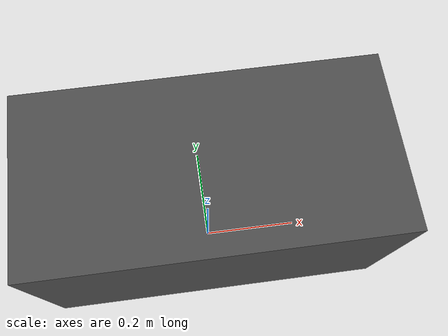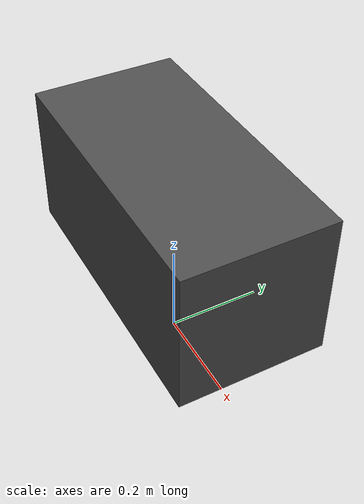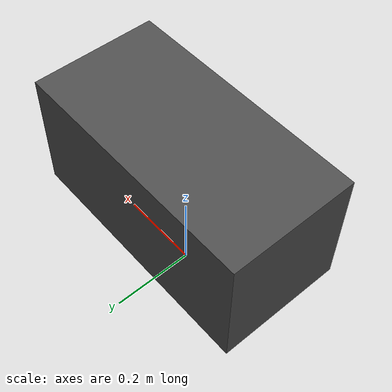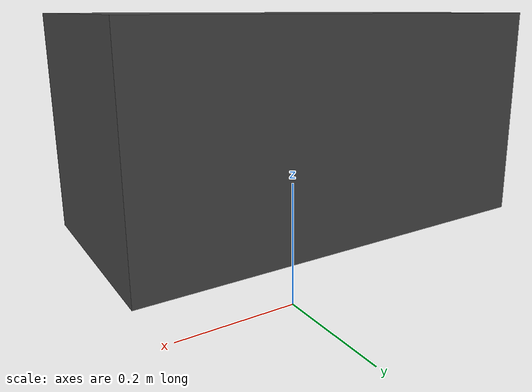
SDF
<?xml version="1.0" ?>
<sdf version="1.6">
  <model name="unitree_go2_stub">
    <pose>0 0 0.3 0 0 0</pose>
    <static>false</static>

    <link name="base_link">
      <inertial>
        <mass>15.0</mass>
        <inertia>
          <ixx>0.5</ixx><iyy>0.5</iyy><izz>0.5</izz>
          <ixy>0</ixy><ixz>0</ixz><iyz>0</iyz>
        </inertia>
      </inertial>
      <collision name="body">
        <geometry>
          <box><size>0.6 0.3 0.3</size></box>
        </geometry>
      </collision>
      <visual name="body">
        <geometry>
          <box><size>0.6 0.3 0.3</size></box>
        </geometry>
        <material>
          <ambient>0.3 0.3 0.3 1</ambient>
        </material>
      </visual>
    </link>

    <!-- Minimal odom + cmd_vel plugin so multi_robot_5 launch graph
         can publish/subscribe per-robot. -->
    <plugin name="diff_drive" filename="libgazebo_ros_diff_drive.so">
      <ros>
        <remapping>cmd_vel:=cmd_vel</remapping>
        <remapping>odom:=odom</remapping>
      </ros>
      <update_rate>30</update_rate>
      <wheel_separation>0.3</wheel_separation>
      <wheel_diameter>0.1</wheel_diameter>
    </plugin>
  </model>
</sdf>
